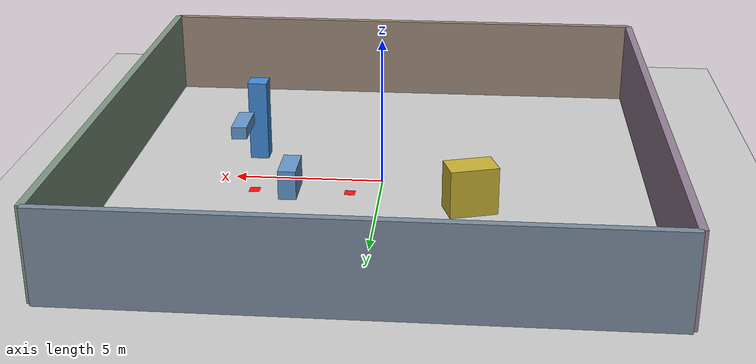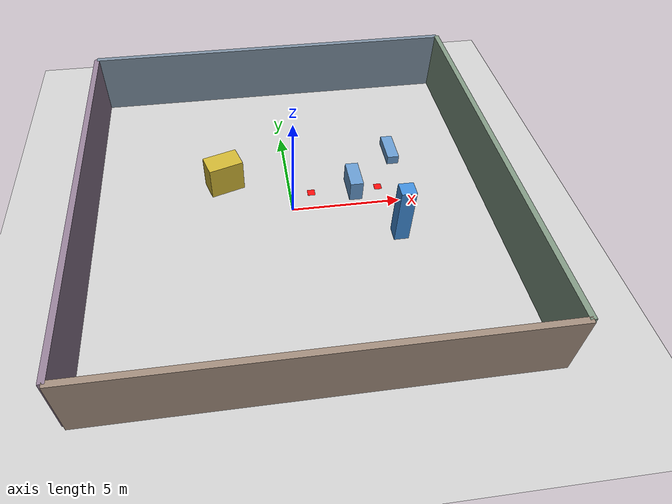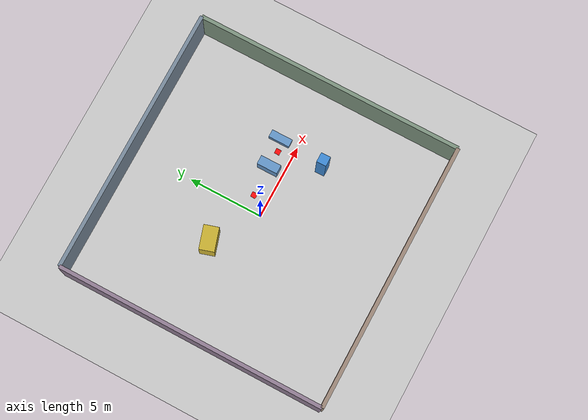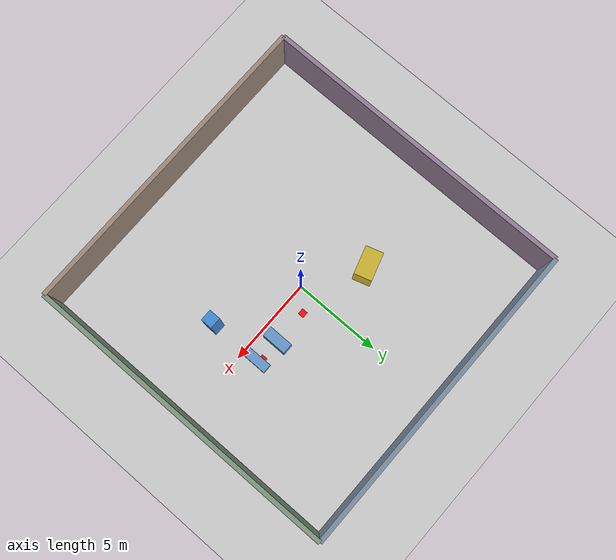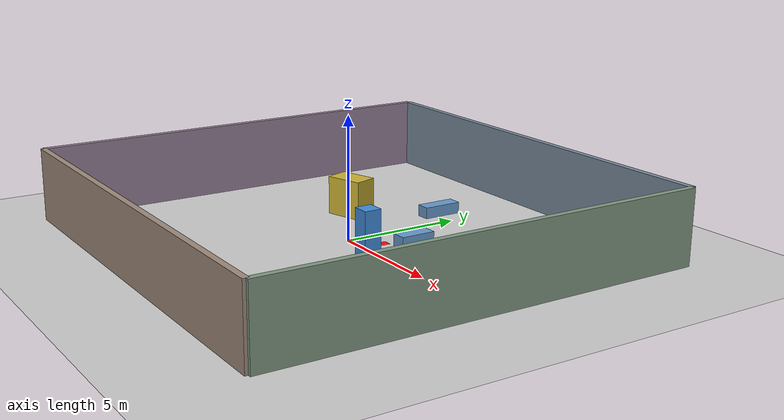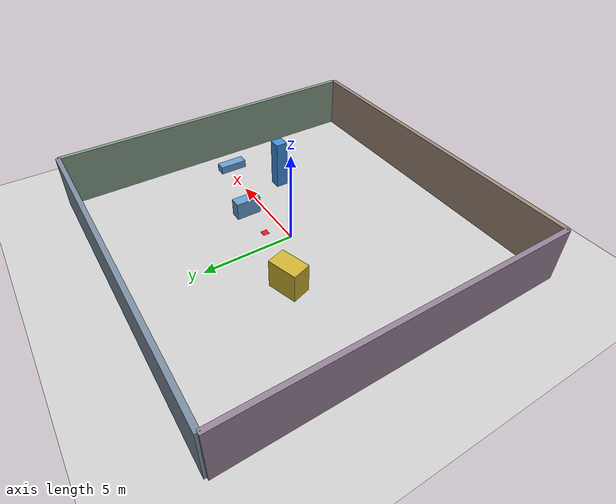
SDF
<?xml version='1.0' encoding='UTF-8'?>
<sdf version="1.6">
  <world name="inspection_3d">
    <gravity>0 0 -9.81</gravity>
    <include><uri>model://sun</uri></include>
    <include><uri>model://ground_plane</uri></include>
    <physics name="ode" type="ode"><max_step_size>0.002</max_step_size><real_time_update_rate>500</real_time_update_rate></physics>
    <model name="north_wall"><static>true</static><link name="wall"><pose>0 9 1.5 0 0 0</pose><collision name="collision"><geometry><box><size>18 0.25 3</size></box></geometry></collision><visual name="visual"><geometry><box><size>18 0.25 3</size></box></geometry><material><ambient>0.48 0.55 0.62 1</ambient></material></visual></link></model>
    <model name="south_wall"><static>true</static><link name="wall"><pose>0 -9 1.5 0 0 0</pose><collision name="collision"><geometry><box><size>18 0.25 3</size></box></geometry></collision><visual name="visual"><geometry><box><size>18 0.25 3</size></box></geometry><material><ambient>0.62 0.54 0.48 1</ambient></material></visual></link></model>
    <model name="east_wall"><static>true</static><link name="wall"><pose>9 0 1.5 0 0 0</pose><collision name="collision"><geometry><box><size>0.25 18 3</size></box></geometry></collision><visual name="visual"><geometry><box><size>0.25 18 3</size></box></geometry><material><ambient>0.50 0.59 0.51 1</ambient></material></visual></link></model>
    <model name="west_wall"><static>true</static><link name="wall"><pose>-9 0 1.5 0 0 0</pose><collision name="collision"><geometry><box><size>0.25 18 3</size></box></geometry></collision><visual name="visual"><geometry><box><size>0.25 18 3</size></box></geometry><material><ambient>0.58 0.50 0.59 1</ambient></material></visual></link></model>
    <model name="pillar_b"><static>true</static><link name="post"><pose>4.5 -2 1.4 0 0 0</pose><collision name="collision"><geometry><box><size>0.65 0.65 2.8</size></box></geometry></collision><visual name="visual"><geometry><box><size>0.65 0.65 2.8</size></box></geometry><material><ambient>0.25 0.55 0.85 1</ambient></material></visual></link></model>
    <model name="inspection_machine"><static>true</static><link name="machine"><pose>-3 2 0.8 0 0 0.3</pose><collision name="collision"><geometry><box><size>1.6 1.0 1.6</size></box></geometry></collision><visual name="visual"><geometry><box><size>1.6 1.0 1.6</size></box></geometry><material><ambient>0.8 0.7 0.2 1</ambient></material></visual></link></model>

    <model name="down_camera_target"><static>true</static><link name="target"><pose>1 1 0.003 0 0 0</pose><visual name="visual"><geometry><box><size>0.35 0.35 0.002</size></box></geometry><material><ambient>1 0.05 0.05 1</ambient><diffuse>1 0.05 0.05 1</diffuse></material></visual></link></model>
    <model name="down_camera_target_goal"><static>true</static><link name="target"><pose>4.2 1 0.003 0 0 0</pose><visual name="visual"><geometry><box><size>0.35 0.35 0.002</size></box></geometry><material><ambient>1 0.05 0.05 1</ambient><diffuse>1 0.05 0.05 1</diffuse></material></visual></link></model>
  <model name="low_barrier"><static>true</static><link name="obstacle"><pose>3 1 0.5 0 0 0</pose><collision name="collision"><geometry><box><size>0.6 1.4 1</size></box></geometry></collision><visual name="visual"><geometry><box><size>0.6 1.4 1</size></box></geometry><material><ambient>.4 .6 .8 1</ambient></material></visual></link></model><model name="overhead_beam"><static>true</static><link name="obstacle"><pose>4.5 1 2.3 0 0 0</pose><collision name="collision"><geometry><box><size>0.5 1.4 0.4</size></box></geometry></collision><visual name="visual"><geometry><box><size>0.5 1.4 0.4</size></box></geometry><material><ambient>.4 .6 .8 1</ambient></material></visual></link></model></world>
</sdf>
